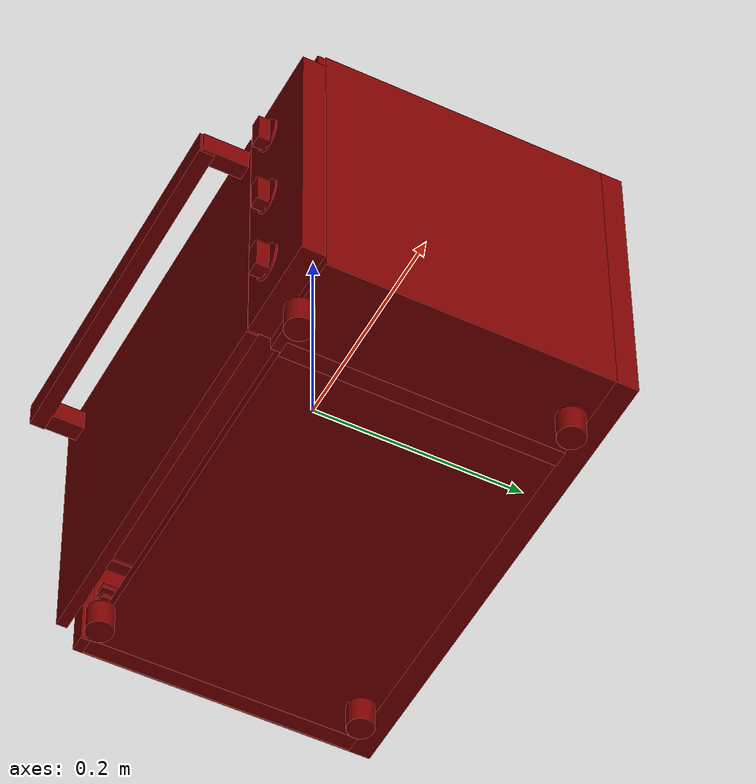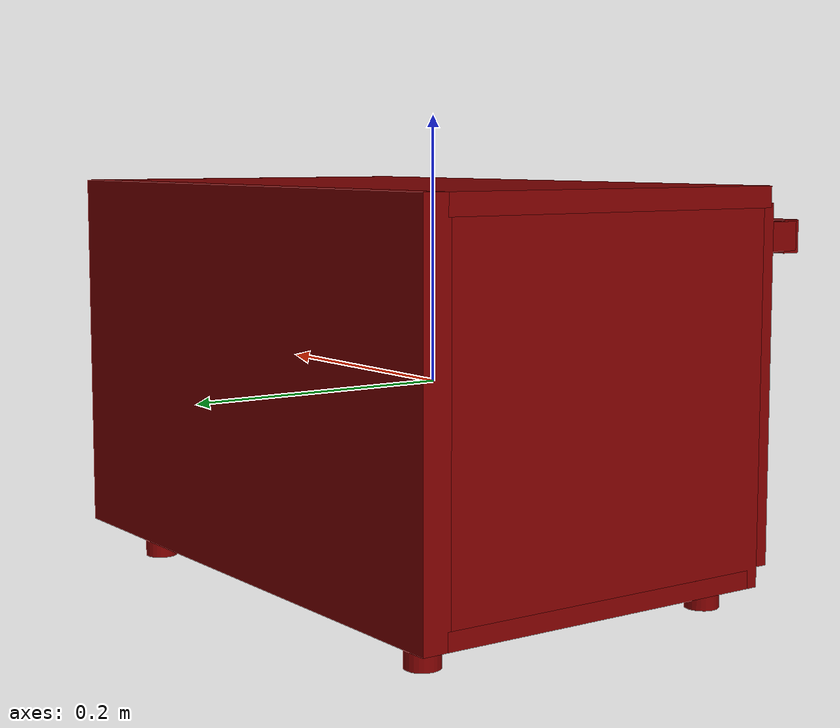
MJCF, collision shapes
<?xml version='1.0' encoding='UTF-8'?>
<mujoco model="model">
  <option timestep="0.002" gravity="0.0 0.0 -9.81"/>
  <compiler angle="radian"/>
  <asset>
    <mesh file="visuals/Body001.obj" name="Body001_vis"/>
    <mesh file="visuals/Door001.obj" name="Door001_vis"/>
    <mesh file="visuals/Door001_Clear.obj" name="Door001_Clear_vis"/>
    <mesh file="visuals/Knob001.obj" name="Knob001_vis"/>
    <mesh file="visuals/Knob002.obj" name="Knob002_vis"/>
    <mesh file="visuals/Knob003.obj" name="Knob003_vis"/>
    <mesh file="visuals/Shelf001.obj" name="Shelf001_vis"/>
    <mesh file="visuals/Shelf002.obj" name="Shelf002_vis"/>
    <texture file="visuals/T_BC001.png" name="Body001_material" type="2d"/>
    <material name="Body001_material" rgba="1 1 1 1.0" texture="Body001_material" shininess="0.5721649527549744" specular="0.5"/>
    <texture file="visuals/T_BC001.png" name="Door001_material" type="2d"/>
    <material name="Door001_material" rgba="1 1 1 1.0" texture="Door001_material" shininess="0.5721649527549744" specular="0.5"/>
    <texture file="visuals/T_BC001.png" name="Door001_Clear_material" type="2d"/>
    <material name="Door001_Clear_material" rgba="1 1 1 0.800000011920929" texture="Door001_Clear_material" shininess="0.5" specular="0.3103448502657381"/>
    <texture file="visuals/T_BC001.png" name="Knob001_material" type="2d"/>
    <material name="Knob001_material" rgba="1 1 1 1.0" texture="Knob001_material" shininess="0.5721649527549744" specular="0.5"/>
    <texture file="visuals/T_BC001.png" name="Knob002_material" type="2d"/>
    <material name="Knob002_material" rgba="1 1 1 1.0" texture="Knob002_material" shininess="0.5721649527549744" specular="0.5"/>
    <texture file="visuals/T_BC001.png" name="Knob003_material" type="2d"/>
    <material name="Knob003_material" rgba="1 1 1 1.0" texture="Knob003_material" shininess="0.5721649527549744" specular="0.5"/>
    <texture file="visuals/T_BC001.png" name="Shelf001_material" type="2d"/>
    <material name="Shelf001_material" rgba="1 1 1 1.0" texture="Shelf001_material" shininess="0.5721649527549744" specular="8"/>
    <texture file="visuals/T_BC001.png" name="Shelf002_material" type="2d"/>
    <material name="Shelf002_material" rgba="1 1 1 1.0" texture="Shelf002_material" shininess="0.5721649527549744" specular="8"/>
  </asset>
  <default>
    <default class="visual">
      <geom conaffinity="0" contype="0" group="1" type="mesh"/>
    </default>
    <default class="collision">
      <geom group="0" rgba="0.5 0 0 0.5"/>
    </default>
    <default class="spawn">
      <geom group="0" rgba="1 1 1 0.5" contype="0" conaffinity="0"/>
      <site group="0" rgba="1 1 1 0.5"/>
    </default>
    <default class="region">
      <geom group="1" conaffinity="0" contype="0" rgba="0 1 0 0"/>
    </default>
  </default>
  <worldbody>
    <body>
      <body name="object">
        <geom mesh="Body001_vis" type="mesh" solimp="0.998 0.998 0.001" solref="0.001 1" friction="0.95 0.3 0.1" class="visual" material="Body001_material"/>
        <geom class="collision" type="box" pos="-0.000000 0.163689 0.012458" size="0.23210522532463074 0.010341917164623737 0.13799017667770386" quat="1.0 0.0 0.0 0.0" density="1000.0"/>
        <geom class="collision" type="box" pos="0.184040 0.023186 0.012458" size="0.04806550219655037 0.13078832626342773 0.13799016177654266" quat="1.0 0.0 0.0 0.0" density="1000.0"/>
        <geom class="collision" type="box" pos="-0.000715 0.020569 0.143070" size="0.2313905656337738 0.13502700626850128 0.007378776092082262" quat="1.0 0.0 0.0 0.0" density="1000.0"/>
        <geom class="collision" type="box" pos="-0.224341 0.023186 0.012458" size="0.007764093112200499 0.13078832626342773 0.13799014687538147" quat="1.0 0.0 0.0 0.0" density="1000.0"/>
        <geom class="collision" type="box" pos="-0.000715 0.028293 -0.119090" size="0.2313905656337738 0.1273030936717987 0.006441534962505102" quat="1.0 0.0 0.0 0.0" density="1000.0"/>
        <geom class="collision" type="box" pos="0.185012 -0.118513 0.011332" size="0.04709264636039734 0.010411052033305168 0.12681984901428223" quat="1.0 0.0 0.0 0.0" density="1000.0"/>
        <geom class="collision" type="box" pos="-0.209894 0.017210 0.081267" size="0.006050894036889076 0.11298878490924835 0.0022544332314282656" quat="1.0 0.0 0.0 0.0" density="1000.0"/>
        <geom class="collision" type="box" pos="-0.209894 0.017210 0.069141" size="0.006050890311598778 0.1129886656999588 0.0022544311359524727" quat="1.0 0.0 0.0 0.0" density="1000.0"/>
        <geom class="collision" type="box" pos="-0.209894 0.017210 0.032197" size="0.006050886120647192 0.11298853904008865 0.0022544292733073235" quat="1.0 0.0 0.0 0.0" density="1000.0"/>
        <geom class="collision" type="box" pos="-0.209894 0.017210 0.019977" size="0.0060508823953568935 0.1129884123802185 0.0015937208663672209" quat="1.0 0.0 0.0 0.0" density="1000.0"/>
        <geom class="collision" type="box" pos="-0.209894 0.017210 -0.017780" size="0.006050878670066595 0.11298828572034836 0.0022544253151863813" quat="1.0 0.0 0.0 0.0" density="1000.0"/>
        <geom class="collision" type="box" pos="-0.209894 0.017210 -0.030196" size="0.006050874479115009 0.11298815906047821 0.0015109501546248794" quat="1.0 0.0 0.0 0.0" density="1000.0"/>
        <geom class="collision" type="box" pos="-0.209894 0.017210 -0.077955" size="0.006050870753824711 0.11298803985118866 0.0022544213570654392" quat="1.0 0.0 0.0 0.0" density="1000.0"/>
        <geom class="collision" type="box" pos="-0.209894 0.017210 -0.066282" size="0.006050866562873125 0.11298791319131851 0.00225441949442029" quat="1.0 0.0 0.0 0.0" density="1000.0"/>
        <geom class="collision" type="box" pos="0.127613 0.017210 -0.066282" size="0.006050862837582827 0.11298778653144836 0.002254417398944497" quat="1.0 0.0 0.0 0.0" density="1000.0"/>
        <geom class="collision" type="box" pos="0.127613 0.017210 -0.077955" size="0.006050859112292528 0.11298765987157822 0.002254415536299348" quat="1.0 0.0 0.0 0.0" density="1000.0"/>
        <geom class="collision" type="box" pos="0.127613 0.017210 -0.030196" size="0.006050854921340942 0.11298753321170807 0.0015109441010281444" quat="1.0 0.0 0.0 0.0" density="1000.0"/>
        <geom class="collision" type="box" pos="0.127613 0.017210 -0.017780" size="0.006050851196050644 0.11298741400241852 0.0022544115781784058" quat="1.0 0.0 0.0 0.0" density="1000.0"/>
        <geom class="collision" type="box" pos="0.127613 0.017210 0.019977" size="0.006050847005099058 0.11298728734254837 0.001593703287653625" quat="1.0 0.0 0.0 0.0" density="1000.0"/>
        <geom class="collision" type="box" pos="0.127613 0.017210 0.032197" size="0.00605084327980876 0.11298716068267822 0.0022544076200574636" quat="1.0 0.0 0.0 0.0" density="1000.0"/>
        <geom class="collision" type="box" pos="0.127613 0.017210 0.081267" size="0.006050839554518461 0.11298703402280807 0.0022544057574123144" quat="1.0 0.0 0.0 0.0" density="1000.0"/>
        <geom class="collision" type="box" pos="0.127613 0.017210 0.069141" size="0.0060508353635668755 0.11298690736293793 0.002254403894767165" quat="1.0 0.0 0.0 0.0" density="1000.0"/>
        <geom class="collision" type="cylinder" pos="0.182136 -0.105580 -0.137953" size="0.012438795529305935 0.012438795529305935" quat="1.0 0.0 0.0 0.0" density="1000.0"/>
        <geom class="collision" type="cylinder" pos="-0.182082 -0.105580 -0.137953" size="0.012438795529305935 0.012438795529305935" quat="1.0 0.0 0.0 0.0" density="1000.0"/>
        <geom class="collision" type="cylinder" pos="-0.182082 0.138972 -0.137953" size="0.012438795529305935 0.012438795529305935" quat="1.0 0.0 0.0 0.0" density="1000.0"/>
        <geom class="collision" type="cylinder" pos="0.182136 0.138972 -0.137953" size="0.012438795529305935 0.012438795529305935" quat="1.0 0.0 0.0 0.0" density="1000.0"/>
        <geom class="collision" type="box" pos="-0.223037 0.027635 -0.013897" size="0.007764093112200499 0.12633949518203735 0.11163533478975296" quat="1.0 0.0 0.0 0.0" density="1000.0"/>
        <geom class="collision" type="box" pos="0.139915 0.027635 -0.013897" size="0.007764093112200499 0.12633949518203735 0.11163533478975296" quat="1.0 0.0 0.0 0.0" density="1000.0"/>
        <body name="Door001">
          <joint axis="1.0 0.0 0.0" pos="-0.041657 -0.120837 -0.114362" limited="true" name="Door001_joint" range="0.0 1.5707963267948966" type="hinge" damping="1" frictionloss="1" armature=".01" stiffness="-1" springref="1"/>
          <geom mesh="Door001_vis" type="mesh" solimp="0.998 0.998 0.001" solref="0.001 1" friction="0.95 0.3 0.1" class="visual" material="Door001_material"/>
          <geom class="collision" type="box" pos="-0.042537 -0.123778 0.011332" size="0.17826353013515472 0.005145797040313482 0.1268191784620285" quat="1.0 0.0 0.0 0.0" density="1000.0"/>
          <geom class="collision" type="box" pos="-0.035650 -0.166591 0.113397" size="0.16721297800540924 0.00712622981518507 0.011782152578234673" quat="1.0 0.0 0.0 0.0" density="1000.0"/>
          <geom class="collision" type="box" pos="0.126307 -0.148790 0.113699" size="0.007213503587990999 0.022259080782532692 0.010418037883937359" quat="1.0 0.0 0.0 0.0" density="1000.0"/>
          <geom class="collision" type="box" pos="-0.194962 -0.148790 0.113699" size="0.008266627788543701 0.022259052842855453 0.010418027639389038" quat="1.0 0.0 0.0 0.0" density="1000.0"/>
          <body name="Door001_Clear">
            <geom mesh="Door001_Clear_vis" type="mesh" solimp="0.998 0.998 0.001" solref="0.001 1" friction="0.95 0.3 0.1" class="visual" material="Door001_Clear_material"/>
            <geom class="collision" type="box" pos="-0.036603 -0.124213 0.004227" size="0.17199403047561646 0.0010119123617187142 0.09566644579172134" quat="1.0 0.0 0.0 0.0" density="1000.0"/>
          </body>
        </body>
        <body name="Knob001">
          <joint axis="0.0 -1.0 0.0" pos="0.179156 -0.138023 0.088678" limited="true" name="Knob001_joint" range="0.0 5.515240436302081" type="hinge" damping="0.05" armature="0.001"/>
          <geom mesh="Knob001_vis" type="mesh" solimp="0.998 0.998 0.001" solref="0.001 1" friction="0.95 0.3 0.1" class="visual" material="Knob001_material"/>
          <geom class="collision" type="cylinder" pos="0.179307 -0.134087 0.089324" size="0.014410487376153469 0.001302103977650404" quat="0.7071067094802856 -0.70710688829422 -1.5700926965105832e-16 -1.2790030626010778e-23" density="1000.0"/>
          <geom class="collision" type="box" pos="0.179158 -0.139926 0.088981" size="0.005749998148530722 0.00550345191732049 0.014060215093195438" quat="1.0 0.0 0.0 0.0" density="1000.0"/>
        </body>
        <body name="Knob002">
          <joint axis="0.0 -1.0 0.0" pos="0.179156 -0.138023 0.006974" limited="true" name="Knob002_joint" range="0.0 5.515240436302081" type="hinge" damping="0.05" armature="0.001"/>
          <geom mesh="Knob002_vis" type="mesh" solimp="0.998 0.998 0.001" solref="0.001 1" friction="0.95 0.3 0.1" class="visual" material="Knob002_material"/>
          <geom class="collision" type="cylinder" pos="0.179307 -0.133720 0.007342" size="0.015191057696938515 0.0010731489164754748" quat="0.7071067094802856 -0.70710688829422 -1.5700926965105832e-16 -1.2790030626010778e-23" density="1000.0"/>
          <geom class="collision" type="box" pos="0.179158 -0.139926 0.006643" size="0.005749998148530722 0.00550345191732049 0.014060215093195438" quat="1.0 0.0 0.0 0.0" density="1000.0"/>
        </body>
        <body name="Knob003">
          <joint axis="0.0 -1.0 0.0" pos="0.179156 -0.140403 -0.078211" limited="true" name="Knob003_joint" range="0.0 5.515240436302081" type="hinge" damping="0.05" armature="0.001"/>
          <geom mesh="Knob003_vis" type="mesh" solimp="0.998 0.998 0.001" solref="0.001 1" friction="0.95 0.3 0.1" class="visual" material="Knob003_material"/>
          <geom class="collision" type="cylinder" pos="0.179158 -0.133042 -0.077950" size="0.01605573296546936 0.0012484393082559109" quat="0.7071067094802856 -0.70710688829422 -1.5700929612083792e-16 -2.2148514736588345e-23" density="1000.0"/>
          <geom class="collision" type="box" pos="0.178756 -0.140124 -0.077950" size="0.0064558242447674274 0.0057007628493011 0.01514404360204935" quat="1.0 0.0 0.0 0.0" density="1000.0"/>
        </body>
        <body name="Shelf001">
          <joint axis="0.0 -1.0 0.0" pos="-0.046013 0.018554 0.024009" limited="true" name="Shelf001_joint" range="0.0 0.15" type="slide" damping="1" frictionloss="1" armature=".01" stiffness="0.05"/>
          <geom mesh="Shelf001_vis" type="mesh" solimp="0.998 0.998 0.001" solref="0.001 1" friction="0.95 0.3 0.1" class="visual" material="Shelf001_material"/>
          <geom class="collision" type="box" pos="-0.041387 0.020868 0.024701" size="0.16962191462516785 0.11714676022529602 0.0020563534926623106" quat="1.0 0.0 0.0 0.0" density="1000.0"/>
        </body>
        <body name="Shelf002">
          <joint axis="0.0 -1.0 0.0" pos="-0.046650 0.017457 -0.026213" limited="true" name="Shelf002_joint" range="0.0 0.15" type="slide" damping="1" frictionloss="1" armature=".01" stiffness="0.05"/>
          <geom mesh="Shelf002_vis" type="mesh" solimp="0.998 0.998 0.001" solref="0.001 1" friction="0.95 0.3 0.1" class="visual" material="Shelf002_material"/>
          <geom class="collision" type="box" pos="-0.041387 0.020868 -0.025827" size="0.16962195932865143 0.1171468049287796 0.0020563509315252304" quat="1.0 0.0 0.0 0.0" density="1000.0"/>
        </body>
        <geom class="region" name="reg_int" type="box" pos="-0.0423775 0.014177499999999996 0.011002999999999999" size="0.17965750000000003 0.14108749999999998 0.12703599999999998"/>
        <geom class="region" name="reg_main" type="box" pos="0.0 0.02097850000000001 -2.1500000000007624e-05" size="0.232105 0.1530995 0.1504695"/>
      </body>
    </body>
  </worldbody>
  <actuator>
    <motor name="Door001_joint_actuator" joint="Door001_joint" gear="50"/>
    <motor name="Knob001_joint_actuator" joint="Knob001_joint" gear="50"/>
    <motor name="Knob002_joint_actuator" joint="Knob002_joint" gear="50"/>
    <motor name="Knob003_joint_actuator" joint="Knob003_joint" gear="50"/>
    <motor name="Shelf001_joint_actuator" joint="Shelf001_joint" gear="50"/>
    <motor name="Shelf002_joint_actuator" joint="Shelf002_joint" gear="50"/>
  </actuator>
</mujoco>
